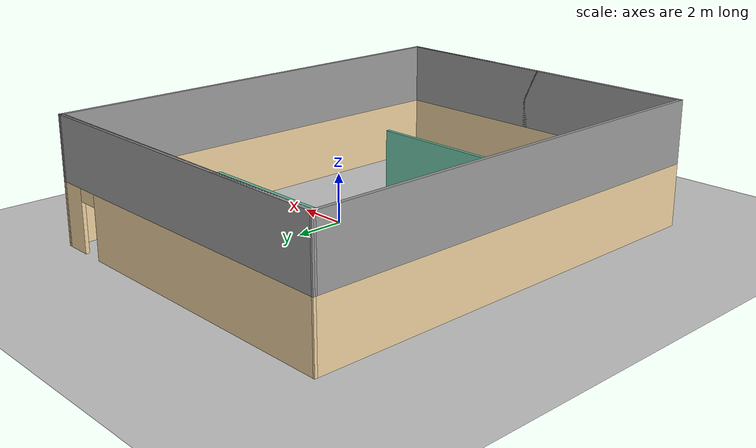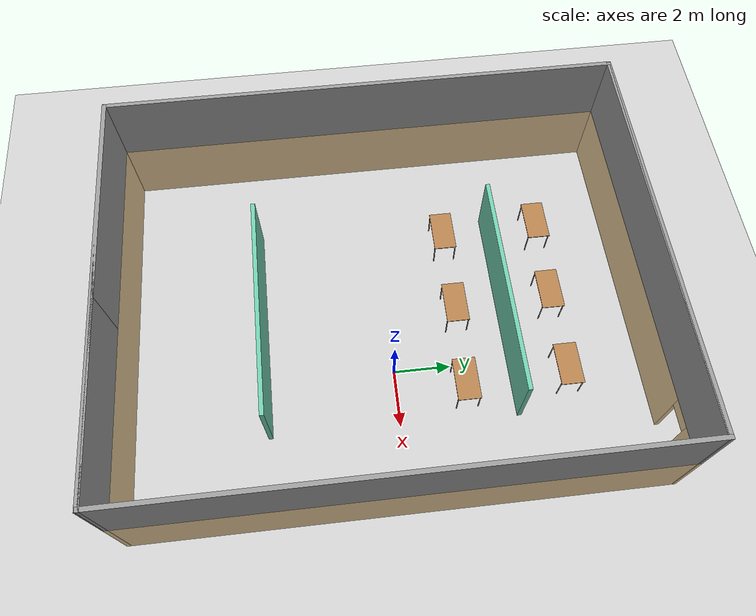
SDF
<sdf version="1.7">
 <world name="default">
  <model name="ground_plane">
   <static>1</static>
   <link name="link">
    <collision name="collision">
     <geometry><plane><normal>0 0 1</normal><size>100 100</size></plane></geometry>
     <surface>
      <contact><collide_bitmask>65535</collide_bitmask></contact>
      <friction><ode><mu>100</mu><mu2>50</mu2></ode></friction>
     </surface>
    </collision>
    <visual name="visual">
     <cast_shadows>0</cast_shadows>
     <geometry><plane><normal>0 0 1</normal><size>100 100</size></plane></geometry>
     <material>
      <script><uri>file://media/materials/scripts/gazebo.material</uri><name>Gazebo/Grey</name></script>
     </material>
    </visual>
   </link>
  </model>
  <model name="paredes">
   <link name="Wall_10">
    <pose>0 8.92496 2.5 0 -0 0.001098</pose>
    <visual name="Wall_10_Visual">
     <pose>0 0 1.25 0 -0 0</pose>
     <geometry><box><size>14 0.15 2.5</size></box></geometry>
     <material>
      <script><uri>file://media/materials/scripts/gazebo.material</uri><name>Gazebo/Grey</name></script>
      <ambient>1 1 1 1</ambient>
      <shader type="pixel"/>
     </material>
     <meta><layer>1</layer></meta>
    </visual>
    <collision name="Wall_10_Collision">
     <pose>0 0 1.25 0 -0 0</pose>
     <geometry><box><size>14 0.15 2.5</size></box></geometry>
     <surface>
      <friction>
       <ode><mu>1</mu><mu2>1</mu2><fdir1>0 0 0</fdir1><slip1>0</slip1><slip2>0</slip2></ode>
       <torsional>
        <coefficient>1</coefficient>
        <patch_radius>0</patch_radius>
        <surface_radius>0</surface_radius>
        <use_patch_radius>1</use_patch_radius>
        <ode><slip>0</slip></ode>
       </torsional>
      </friction>
      <bounce><restitution_coefficient>0</restitution_coefficient><threshold>1e+06</threshold></bounce>
      <contact>
       <collide_without_contact>0</collide_without_contact>
       <collide_without_contact_bitmask>1</collide_without_contact_bitmask>
       <collide_bitmask>1</collide_bitmask>
       <ode>
        <soft_cfm>0</soft_cfm>
        <soft_erp>0.2</soft_erp>
        <kp>1e+13</kp>
        <kd>1</kd>
        <max_vel>0.01</max_vel>
        <min_depth>0</min_depth>
       </ode>
       <bullet>
        <split_impulse>1</split_impulse>
        <split_impulse_penetration_threshold>-0.01</split_impulse_penetration_threshold>
        <soft_cfm>0</soft_cfm>
        <soft_erp>0.2</soft_erp>
        <kp>1e+13</kp>
        <kd>1</kd>
       </bullet>
      </contact>
     </surface>
    </collision>
   </link>
   <link name="Wall_11">
    <pose>-6.925 -0.007645 2.5 0 0 -1.5708</pose>
    <visual name="Wall_11_Visual">
     <pose>0 0 1.25 0 -0 0</pose>
     <geometry><box><size>18 0.15 2.5</size></box></geometry>
     <material>
      <script><uri>file://media/materials/scripts/gazebo.material</uri><name>Gazebo/Grey</name></script>
      <ambient>1 1 1 1</ambient>
      <shader type="pixel"/>
     </material>
     <meta><layer>1</layer></meta>
    </visual>
    <collision name="Wall_11_Collision">
     <pose>0 0 1.25 0 -0 0</pose>
     <geometry><box><size>18 0.15 2.5</size></box></geometry>
     <surface>
      <friction>
       <ode><mu>1</mu><mu2>1</mu2><fdir1>0 0 0</fdir1><slip1>0</slip1><slip2>0</slip2></ode>
       <torsional>
        <coefficient>1</coefficient>
        <patch_radius>0</patch_radius>
        <surface_radius>0</surface_radius>
        <use_patch_radius>1</use_patch_radius>
        <ode><slip>0</slip></ode>
       </torsional>
      </friction>
      <bounce><restitution_coefficient>0</restitution_coefficient><threshold>1e+06</threshold></bounce>
      <contact>
       <collide_without_contact>0</collide_without_contact>
       <collide_without_contact_bitmask>1</collide_without_contact_bitmask>
       <collide_bitmask>1</collide_bitmask>
       <ode>
        <soft_cfm>0</soft_cfm>
        <soft_erp>0.2</soft_erp>
        <kp>1e+13</kp>
        <kd>1</kd>
        <max_vel>0.01</max_vel>
        <min_depth>0</min_depth>
       </ode>
       <bullet>
        <split_impulse>1</split_impulse>
        <split_impulse_penetration_threshold>-0.01</split_impulse_penetration_threshold>
        <soft_cfm>0</soft_cfm>
        <soft_erp>0.2</soft_erp>
        <kp>1e+13</kp>
        <kd>1</kd>
       </bullet>
      </contact>
     </surface>
    </collision>
   </link>
   <link name="Wall_12">
    <pose>6.925 0.007564 2.5 0 0 -1.5708</pose>
    <inertial>
     <mass>1</mass>
     <inertia><ixx>1</ixx><ixy>0</ixy><ixz>0</ixz><iyy>1</iyy><iyz>0</iyz><izz>1</izz></inertia>
    </inertial>
    <visual name="Wall_12_Visual">
     <pose>0 0 1.25 0 -0 0</pose>
     <geometry><box><size>18 0.15 2.5</size></box></geometry>
     <material>
      <script><uri>file://media/materials/scripts/gazebo.material</uri><name>Gazebo/Grey</name></script>
      <ambient>1 1 1 1</ambient>
      <shader type="pixel"><normal_map>__default__</normal_map></shader>
      <diffuse>0.7 0.7 0.7 1</diffuse>
      <specular>0.01 0.01 0.01 1</specular>
      <emissive>0 0 0 1</emissive>
     </material>
     <meta><layer>1</layer></meta>
    </visual>
    <collision name="Wall_12_Collision">
     <pose>0 0 1.25 0 -0 0</pose>
     <geometry><box><size>18 0.15 2.5</size></box></geometry>
     <surface>
      <friction>
       <ode><mu>1</mu><mu2>1</mu2><fdir1>0 0 0</fdir1><slip1>0</slip1><slip2>0</slip2></ode>
       <torsional>
        <coefficient>1</coefficient>
        <patch_radius>0</patch_radius>
        <surface_radius>0</surface_radius>
        <use_patch_radius>1</use_patch_radius>
        <ode><slip>0</slip></ode>
       </torsional>
      </friction>
      <bounce><restitution_coefficient>0</restitution_coefficient><threshold>1e+06</threshold></bounce>
      <contact>
       <collide_without_contact>0</collide_without_contact>
       <collide_without_contact_bitmask>1</collide_without_contact_bitmask>
       <collide_bitmask>1</collide_bitmask>
       <ode>
        <soft_cfm>0</soft_cfm>
        <soft_erp>0.2</soft_erp>
        <kp>1e+13</kp>
        <kd>1</kd>
        <max_vel>0.01</max_vel>
        <min_depth>0</min_depth>
       </ode>
       <bullet>
        <split_impulse>1</split_impulse>
        <split_impulse_penetration_threshold>-0.01</split_impulse_penetration_threshold>
        <soft_cfm>0</soft_cfm>
        <soft_erp>0.2</soft_erp>
        <kp>1e+13</kp>
        <kd>1</kd>
       </bullet>
      </contact>
     </surface>
    </collision>
   </link>
   <link name="Wall_13">
    <pose>0 -8.93265 2.5 0 -0 0</pose>
    <visual name="Wall_13_Visual">
     <pose>0 0 1.25 0 -0 0</pose>
     <geometry><box><size>14 0.15 2.5</size></box></geometry>
     <material>
      <script><uri>file://media/materials/scripts/gazebo.material</uri><name>Gazebo/Grey</name></script>
      <ambient>1 1 1 1</ambient>
      <shader type="pixel"/>
     </material>
     <meta><layer>1</layer></meta>
    </visual>
    <collision name="Wall_13_Collision">
     <pose>0 0 1.25 0 -0 0</pose>
     <geometry><box><size>14 0.15 2.5</size></box></geometry>
     <surface>
      <friction>
       <ode><mu>1</mu><mu2>1</mu2><fdir1>0 0 0</fdir1><slip1>0</slip1><slip2>0</slip2></ode>
       <torsional>
        <coefficient>1</coefficient>
        <patch_radius>0</patch_radius>
        <surface_radius>0</surface_radius>
        <use_patch_radius>1</use_patch_radius>
        <ode><slip>0</slip></ode>
       </torsional>
      </friction>
      <bounce><restitution_coefficient>0</restitution_coefficient><threshold>1e+06</threshold></bounce>
      <contact>
       <collide_without_contact>0</collide_without_contact>
       <collide_without_contact_bitmask>1</collide_without_contact_bitmask>
       <collide_bitmask>1</collide_bitmask>
       <ode>
        <soft_cfm>0</soft_cfm>
        <soft_erp>0.2</soft_erp>
        <kp>1e+13</kp>
        <kd>1</kd>
        <max_vel>0.01</max_vel>
        <min_depth>0</min_depth>
       </ode>
       <bullet>
        <split_impulse>1</split_impulse>
        <split_impulse_penetration_threshold>-0.01</split_impulse_penetration_threshold>
        <soft_cfm>0</soft_cfm>
        <soft_erp>0.2</soft_erp>
        <kp>1e+13</kp>
        <kd>1</kd>
       </bullet>
      </contact>
     </surface>
    </collision>
   </link>
   <link name="Wall_14">
    <pose>0 8.91736 2.5 0 -0 0</pose>
    <visual name="Wall_14_Visual">
     <pose>0 0 1.25 0 -0 0</pose>
     <geometry><box><size>14 0.15 2.5</size></box></geometry>
     <material>
      <script><uri>file://media/materials/scripts/gazebo.material</uri><name>Gazebo/Grey</name></script>
      <ambient>1 1 1 1</ambient>
      <shader type="pixel"/>
     </material>
     <meta><layer>1</layer></meta>
    </visual>
    <collision name="Wall_14_Collision">
     <pose>0 0 1.25 0 -0 0</pose>
     <geometry><box><size>14 0.15 2.5</size></box></geometry>
     <surface>
      <friction>
       <ode><mu>1</mu><mu2>1</mu2><fdir1>0 0 0</fdir1><slip1>0</slip1><slip2>0</slip2></ode>
       <torsional>
        <coefficient>1</coefficient>
        <patch_radius>0</patch_radius>
        <surface_radius>0</surface_radius>
        <use_patch_radius>1</use_patch_radius>
        <ode><slip>0</slip></ode>
       </torsional>
      </friction>
      <bounce><restitution_coefficient>0</restitution_coefficient><threshold>1e+06</threshold></bounce>
      <contact>
       <collide_without_contact>0</collide_without_contact>
       <collide_without_contact_bitmask>1</collide_without_contact_bitmask>
       <collide_bitmask>1</collide_bitmask>
       <ode>
        <soft_cfm>0</soft_cfm>
        <soft_erp>0.2</soft_erp>
        <kp>1e+13</kp>
        <kd>1</kd>
        <max_vel>0.01</max_vel>
        <min_depth>0</min_depth>
       </ode>
       <bullet>
        <split_impulse>1</split_impulse>
        <split_impulse_penetration_threshold>-0.01</split_impulse_penetration_threshold>
        <soft_cfm>0</soft_cfm>
        <soft_erp>0.2</soft_erp>
        <kp>1e+13</kp>
        <kd>1</kd>
       </bullet>
      </contact>
     </surface>
    </collision>
   </link>
   <link name="Wall_16">
    <pose>-6.925 -0.007645 2.5 0 0 -1.5708</pose>
    <visual name="Wall_16_Visual">
     <pose>0 0 1.25 0 -0 0</pose>
     <geometry><box><size>18 0.15 2.5</size></box></geometry>
     <material>
      <script><uri>file://media/materials/scripts/gazebo.material</uri><name>Gazebo/Grey</name></script>
      <ambient>1 1 1 1</ambient>
      <shader type="pixel"/>
     </material>
     <meta><layer>1</layer></meta>
    </visual>
    <collision name="Wall_16_Collision">
     <pose>0 0 1.25 0 -0 0</pose>
     <geometry><box><size>18 0.15 2.5</size></box></geometry>
     <surface>
      <friction>
       <ode><mu>1</mu><mu2>1</mu2><fdir1>0 0 0</fdir1><slip1>0</slip1><slip2>0</slip2></ode>
       <torsional>
        <coefficient>1</coefficient>
        <patch_radius>0</patch_radius>
        <surface_radius>0</surface_radius>
        <use_patch_radius>1</use_patch_radius>
        <ode><slip>0</slip></ode>
       </torsional>
      </friction>
      <bounce><restitution_coefficient>0</restitution_coefficient><threshold>1e+06</threshold></bounce>
      <contact>
       <collide_without_contact>0</collide_without_contact>
       <collide_without_contact_bitmask>1</collide_without_contact_bitmask>
       <collide_bitmask>1</collide_bitmask>
       <ode>
        <soft_cfm>0</soft_cfm>
        <soft_erp>0.2</soft_erp>
        <kp>1e+13</kp>
        <kd>1</kd>
        <max_vel>0.01</max_vel>
        <min_depth>0</min_depth>
       </ode>
       <bullet>
        <split_impulse>1</split_impulse>
        <split_impulse_penetration_threshold>-0.01</split_impulse_penetration_threshold>
        <soft_cfm>0</soft_cfm>
        <soft_erp>0.2</soft_erp>
        <kp>1e+13</kp>
        <kd>1</kd>
       </bullet>
      </contact>
     </surface>
    </collision>
   </link>
   <link name="Wall_2">
    <pose>0 8.92496 0 0 -0 0.001098</pose>
    <visual name="Wall_2_Visual_1">
     <pose>6.41449 0 1.25 0 -0 0</pose>
     <geometry><box><size>1.17102 0.15 2.5</size></box></geometry>
     <material>
      <script><uri>file://media/materials/scripts/gazebo.material</uri><name>Gazebo/Grey</name></script>
      <ambient>0.921569 0.807843 0.615686 1</ambient>
      <shader type="pixel"/>
     </material>
     <meta><layer>0</layer></meta>
    </visual>
    <visual name="Wall_2_Visual_2">
     <pose>5.37898 0 2.25 0 -0 0</pose>
     <geometry><box><size>0.9 0.15 0.5</size></box></geometry>
     <material>
      <script><uri>file://media/materials/scripts/gazebo.material</uri><name>Gazebo/Grey</name></script>
      <ambient>0.921569 0.807843 0.615686 1</ambient>
      <shader type="pixel"/>
     </material>
     <meta><layer>0</layer></meta>
    </visual>
    <visual name="Wall_2_Visual_0">
     <pose>-1.03551 0 1.25 0 -0 0</pose>
     <geometry><box><size>11.929 0.15 2.5</size></box></geometry>
     <material>
      <script><uri>file://media/materials/scripts/gazebo.material</uri><name>Gazebo/Grey</name></script>
      <ambient>0.921569 0.807843 0.615686 1</ambient>
      <shader type="pixel"/>
     </material>
     <meta><layer>0</layer></meta>
    </visual>
    <collision name="Wall_2_Collision_0">
     <pose>-1.03551 0 1.25 0 -0 0</pose>
     <geometry><box><size>11.929 0.15 2.5</size></box></geometry>
     <surface>
      <friction>
       <ode><mu>1</mu><mu2>1</mu2><fdir1>0 0 0</fdir1><slip1>0</slip1><slip2>0</slip2></ode>
       <torsional>
        <coefficient>1</coefficient>
        <patch_radius>0</patch_radius>
        <surface_radius>0</surface_radius>
        <use_patch_radius>1</use_patch_radius>
        <ode><slip>0</slip></ode>
       </torsional>
      </friction>
      <bounce><restitution_coefficient>0</restitution_coefficient><threshold>1e+06</threshold></bounce>
      <contact>
       <collide_without_contact>0</collide_without_contact>
       <collide_without_contact_bitmask>1</collide_without_contact_bitmask>
       <collide_bitmask>1</collide_bitmask>
       <ode>
        <soft_cfm>0</soft_cfm>
        <soft_erp>0.2</soft_erp>
        <kp>1e+13</kp>
        <kd>1</kd>
        <max_vel>0.01</max_vel>
        <min_depth>0</min_depth>
       </ode>
       <bullet>
        <split_impulse>1</split_impulse>
        <split_impulse_penetration_threshold>-0.01</split_impulse_penetration_threshold>
        <soft_cfm>0</soft_cfm>
        <soft_erp>0.2</soft_erp>
        <kp>1e+13</kp>
        <kd>1</kd>
       </bullet>
      </contact>
     </surface>
    </collision>
    <collision name="Wall_2_Collision_1">
     <pose>6.41449 0 1.25 0 -0 0</pose>
     <geometry><box><size>1.17102 0.15 2.5</size></box></geometry>
     <surface>
      <friction>
       <ode><mu>1</mu><mu2>1</mu2><fdir1>0 0 0</fdir1><slip1>0</slip1><slip2>0</slip2></ode>
       <torsional>
        <coefficient>1</coefficient>
        <patch_radius>0</patch_radius>
        <surface_radius>0</surface_radius>
        <use_patch_radius>1</use_patch_radius>
        <ode><slip>0</slip></ode>
       </torsional>
      </friction>
      <bounce><restitution_coefficient>0</restitution_coefficient><threshold>1e+06</threshold></bounce>
      <contact>
       <collide_without_contact>0</collide_without_contact>
       <collide_without_contact_bitmask>1</collide_without_contact_bitmask>
       <collide_bitmask>1</collide_bitmask>
       <ode>
        <soft_cfm>0</soft_cfm>
        <soft_erp>0.2</soft_erp>
        <kp>1e+13</kp>
        <kd>1</kd>
        <max_vel>0.01</max_vel>
        <min_depth>0</min_depth>
       </ode>
       <bullet>
        <split_impulse>1</split_impulse>
        <split_impulse_penetration_threshold>-0.01</split_impulse_penetration_threshold>
        <soft_cfm>0</soft_cfm>
        <soft_erp>0.2</soft_erp>
        <kp>1e+13</kp>
        <kd>1</kd>
       </bullet>
      </contact>
     </surface>
    </collision>
    <collision name="Wall_2_Collision_2">
     <pose>5.37898 0 2.25 0 -0 0</pose>
     <geometry><box><size>0.9 0.15 0.5</size></box></geometry>
     <surface>
      <friction>
       <ode><mu>1</mu><mu2>1</mu2><fdir1>0 0 0</fdir1><slip1>0</slip1><slip2>0</slip2></ode>
       <torsional>
        <coefficient>1</coefficient>
        <patch_radius>0</patch_radius>
        <surface_radius>0</surface_radius>
        <use_patch_radius>1</use_patch_radius>
        <ode><slip>0</slip></ode>
       </torsional>
      </friction>
      <bounce><restitution_coefficient>0</restitution_coefficient><threshold>1e+06</threshold></bounce>
      <contact>
       <collide_without_contact>0</collide_without_contact>
       <collide_without_contact_bitmask>1</collide_without_contact_bitmask>
       <collide_bitmask>1</collide_bitmask>
       <ode>
        <soft_cfm>0</soft_cfm>
        <soft_erp>0.2</soft_erp>
        <kp>1e+13</kp>
        <kd>1</kd>
        <max_vel>0.01</max_vel>
        <min_depth>0</min_depth>
       </ode>
       <bullet>
        <split_impulse>1</split_impulse>
        <split_impulse_penetration_threshold>-0.01</split_impulse_penetration_threshold>
        <soft_cfm>0</soft_cfm>
        <soft_erp>0.2</soft_erp>
        <kp>1e+13</kp>
        <kd>1</kd>
       </bullet>
      </contact>
     </surface>
    </collision>
   </link>
   <link name="Wall_20">
    <pose>0 -8.93265 2.5 0 -0 3.14159</pose>
    <visual name="Wall_20_Visual">
     <pose>0 0 1.25 0 -0 0</pose>
     <geometry><box><size>14 0.15 2.5</size></box></geometry>
     <material>
      <script><uri>file://media/materials/scripts/gazebo.material</uri><name>Gazebo/Grey</name></script>
      <ambient>1 1 1 1</ambient>
      <shader type="pixel"/>
     </material>
     <meta><layer>1</layer></meta>
    </visual>
    <collision name="Wall_20_Collision">
     <pose>0 0 1.25 0 -0 0</pose>
     <geometry><box><size>14 0.15 2.5</size></box></geometry>
     <surface>
      <friction>
       <ode><mu>1</mu><mu2>1</mu2><fdir1>0 0 0</fdir1><slip1>0</slip1><slip2>0</slip2></ode>
       <torsional>
        <coefficient>1</coefficient>
        <patch_radius>0</patch_radius>
        <surface_radius>0</surface_radius>
        <use_patch_radius>1</use_patch_radius>
        <ode><slip>0</slip></ode>
       </torsional>
      </friction>
      <bounce><restitution_coefficient>0</restitution_coefficient><threshold>1e+06</threshold></bounce>
      <contact>
       <collide_without_contact>0</collide_without_contact>
       <collide_without_contact_bitmask>1</collide_without_contact_bitmask>
       <collide_bitmask>1</collide_bitmask>
       <ode>
        <soft_cfm>0</soft_cfm>
        <soft_erp>0.2</soft_erp>
        <kp>1e+13</kp>
        <kd>1</kd>
        <max_vel>0.01</max_vel>
        <min_depth>0</min_depth>
       </ode>
       <bullet>
        <split_impulse>1</split_impulse>
        <split_impulse_penetration_threshold>-0.01</split_impulse_penetration_threshold>
        <soft_cfm>0</soft_cfm>
        <soft_erp>0.2</soft_erp>
        <kp>1e+13</kp>
        <kd>1</kd>
       </bullet>
      </contact>
     </surface>
    </collision>
   </link>
   <link name="Wall_22">
    <pose>0.076814 4.29812 0 0 -0 0</pose>
    <visual name="Wall_22_Visual">
     <pose>0 0 1.25 0 -0 0</pose>
     <geometry><box><size>8 0.15 2.5</size></box></geometry>
     <material>
      <script><uri>file://media/materials/scripts/gazebo.material</uri><name>Gazebo/Grey</name></script>
      <ambient>0.435294 0.796078 0.67451 1</ambient>
      <shader type="pixel"/>
     </material>
     <meta><layer>0</layer></meta>
    </visual>
    <collision name="Wall_22_Collision">
     <pose>0 0 1.25 0 -0 0</pose>
     <geometry><box><size>8 0.15 2.5</size></box></geometry>
     <surface>
      <friction>
       <ode><mu>1</mu><mu2>1</mu2><fdir1>0 0 0</fdir1><slip1>0</slip1><slip2>0</slip2></ode>
       <torsional>
        <coefficient>1</coefficient>
        <patch_radius>0</patch_radius>
        <surface_radius>0</surface_radius>
        <use_patch_radius>1</use_patch_radius>
        <ode><slip>0</slip></ode>
       </torsional>
      </friction>
      <bounce><restitution_coefficient>0</restitution_coefficient><threshold>1e+06</threshold></bounce>
      <contact>
       <collide_without_contact>0</collide_without_contact>
       <collide_without_contact_bitmask>1</collide_without_contact_bitmask>
       <collide_bitmask>1</collide_bitmask>
       <ode>
        <soft_cfm>0</soft_cfm>
        <soft_erp>0.2</soft_erp>
        <kp>1e+13</kp>
        <kd>1</kd>
        <max_vel>0.01</max_vel>
        <min_depth>0</min_depth>
       </ode>
       <bullet>
        <split_impulse>1</split_impulse>
        <split_impulse_penetration_threshold>-0.01</split_impulse_penetration_threshold>
        <soft_cfm>0</soft_cfm>
        <soft_erp>0.2</soft_erp>
        <kp>1e+13</kp>
        <kd>1</kd>
       </bullet>
      </contact>
     </surface>
    </collision>
   </link>
   <link name="Wall_24">
    <pose>-0.021051 -4.26506 0 0 -0 0</pose>
    <visual name="Wall_24_Visual">
     <pose>0 0 1.25 0 -0 0</pose>
     <geometry><box><size>8 0.15 2.5</size></box></geometry>
     <material>
      <script><uri>file://media/materials/scripts/gazebo.material</uri><name>Gazebo/Grey</name></script>
      <ambient>0.435294 0.796078 0.67451 1</ambient>
      <shader type="pixel"/>
     </material>
     <meta><layer>0</layer></meta>
    </visual>
    <collision name="Wall_24_Collision">
     <pose>0 0 1.25 0 -0 0</pose>
     <geometry><box><size>8 0.15 2.5</size></box></geometry>
     <surface>
      <friction>
       <ode><mu>1</mu><mu2>1</mu2><fdir1>0 0 0</fdir1><slip1>0</slip1><slip2>0</slip2></ode>
       <torsional>
        <coefficient>1</coefficient>
        <patch_radius>0</patch_radius>
        <surface_radius>0</surface_radius>
        <use_patch_radius>1</use_patch_radius>
        <ode><slip>0</slip></ode>
       </torsional>
      </friction>
      <bounce><restitution_coefficient>0</restitution_coefficient><threshold>1e+06</threshold></bounce>
      <contact>
       <collide_without_contact>0</collide_without_contact>
       <collide_without_contact_bitmask>1</collide_without_contact_bitmask>
       <collide_bitmask>1</collide_bitmask>
       <ode>
        <soft_cfm>0</soft_cfm>
        <soft_erp>0.2</soft_erp>
        <kp>1e+13</kp>
        <kd>1</kd>
        <max_vel>0.01</max_vel>
        <min_depth>0</min_depth>
       </ode>
       <bullet>
        <split_impulse>1</split_impulse>
        <split_impulse_penetration_threshold>-0.01</split_impulse_penetration_threshold>
        <soft_cfm>0</soft_cfm>
        <soft_erp>0.2</soft_erp>
        <kp>1e+13</kp>
        <kd>1</kd>
       </bullet>
      </contact>
     </surface>
    </collision>
   </link>
   <link name="Wall_4">
    <pose>-6.925 -0.007645 0 0 0 -1.5708</pose>
    <visual name="Wall_4_Visual">
     <pose>0 0 1.25 0 -0 0</pose>
     <geometry><box><size>18 0.15 2.5</size></box></geometry>
     <material>
      <script><uri>file://media/materials/scripts/gazebo.material</uri><name>Gazebo/Grey</name></script>
      <ambient>0.921569 0.807843 0.615686 1</ambient>
      <shader type="pixel"/>
     </material>
     <meta><layer>0</layer></meta>
    </visual>
    <collision name="Wall_4_Collision">
     <pose>0 0 1.25 0 -0 0</pose>
     <geometry><box><size>18 0.15 2.5</size></box></geometry>
     <surface>
      <friction>
       <ode><mu>1</mu><mu2>1</mu2><fdir1>0 0 0</fdir1><slip1>0</slip1><slip2>0</slip2></ode>
       <torsional>
        <coefficient>1</coefficient>
        <patch_radius>0</patch_radius>
        <surface_radius>0</surface_radius>
        <use_patch_radius>1</use_patch_radius>
        <ode><slip>0</slip></ode>
       </torsional>
      </friction>
      <bounce><restitution_coefficient>0</restitution_coefficient><threshold>1e+06</threshold></bounce>
      <contact>
       <collide_without_contact>0</collide_without_contact>
       <collide_without_contact_bitmask>1</collide_without_contact_bitmask>
       <collide_bitmask>1</collide_bitmask>
       <ode>
        <soft_cfm>0</soft_cfm>
        <soft_erp>0.2</soft_erp>
        <kp>1e+13</kp>
        <kd>1</kd>
        <max_vel>0.01</max_vel>
        <min_depth>0</min_depth>
       </ode>
       <bullet>
        <split_impulse>1</split_impulse>
        <split_impulse_penetration_threshold>-0.01</split_impulse_penetration_threshold>
        <soft_cfm>0</soft_cfm>
        <soft_erp>0.2</soft_erp>
        <kp>1e+13</kp>
        <kd>1</kd>
       </bullet>
      </contact>
     </surface>
    </collision>
   </link>
   <link name="Wall_6">
    <pose>6.925 0.007564 0 0 0 -1.5708</pose>
    <visual name="Wall_6_Visual">
     <pose>0 0 1.25 0 -0 0</pose>
     <geometry><box><size>18 0.15 2.5</size></box></geometry>
     <material>
      <script><uri>file://media/materials/scripts/gazebo.material</uri><name>Gazebo/Grey</name></script>
      <ambient>0.921569 0.807843 0.615686 1</ambient>
      <shader type="pixel"/>
     </material>
     <meta><layer>0</layer></meta>
    </visual>
    <collision name="Wall_6_Collision">
     <pose>0 0 1.25 0 -0 0</pose>
     <geometry><box><size>18 0.15 2.5</size></box></geometry>
     <surface>
      <friction>
       <ode><mu>1</mu><mu2>1</mu2><fdir1>0 0 0</fdir1><slip1>0</slip1><slip2>0</slip2></ode>
       <torsional>
        <coefficient>1</coefficient>
        <patch_radius>0</patch_radius>
        <surface_radius>0</surface_radius>
        <use_patch_radius>1</use_patch_radius>
        <ode><slip>0</slip></ode>
       </torsional>
      </friction>
      <bounce><restitution_coefficient>0</restitution_coefficient><threshold>1e+06</threshold></bounce>
      <contact>
       <collide_without_contact>0</collide_without_contact>
       <collide_without_contact_bitmask>1</collide_without_contact_bitmask>
       <collide_bitmask>1</collide_bitmask>
       <ode>
        <soft_cfm>0</soft_cfm>
        <soft_erp>0.2</soft_erp>
        <kp>1e+13</kp>
        <kd>1</kd>
        <max_vel>0.01</max_vel>
        <min_depth>0</min_depth>
       </ode>
       <bullet>
        <split_impulse>1</split_impulse>
        <split_impulse_penetration_threshold>-0.01</split_impulse_penetration_threshold>
        <soft_cfm>0</soft_cfm>
        <soft_erp>0.2</soft_erp>
        <kp>1e+13</kp>
        <kd>1</kd>
       </bullet>
      </contact>
     </surface>
    </collision>
   </link>
   <link name="Wall_8">
    <pose>0 -8.93265 0 0 -0 0</pose>
    <visual name="Wall_8_Visual">
     <pose>0 0 1.25 0 -0 0</pose>
     <geometry><box><size>14 0.15 2.5</size></box></geometry>
     <material>
      <script><uri>file://media/materials/scripts/gazebo.material</uri><name>Gazebo/Grey</name></script>
      <ambient>0.921569 0.807843 0.615686 1</ambient>
      <shader type="pixel"/>
     </material>
     <meta><layer>0</layer></meta>
    </visual>
    <collision name="Wall_8_Collision">
     <pose>0 0 1.25 0 -0 0</pose>
     <geometry><box><size>14 0.15 2.5</size></box></geometry>
     <surface>
      <friction>
       <ode><mu>1</mu><mu2>1</mu2><fdir1>0 0 0</fdir1><slip1>0</slip1><slip2>0</slip2></ode>
       <torsional>
        <coefficient>1</coefficient>
        <patch_radius>0</patch_radius>
        <surface_radius>0</surface_radius>
        <use_patch_radius>1</use_patch_radius>
        <ode><slip>0</slip></ode>
       </torsional>
      </friction>
      <bounce><restitution_coefficient>0</restitution_coefficient><threshold>1e+06</threshold></bounce>
      <contact>
       <collide_without_contact>0</collide_without_contact>
       <collide_without_contact_bitmask>1</collide_without_contact_bitmask>
       <collide_bitmask>1</collide_bitmask>
       <ode>
        <soft_cfm>0</soft_cfm>
        <soft_erp>0.2</soft_erp>
        <kp>1e+13</kp>
        <kd>1</kd>
        <max_vel>0.01</max_vel>
        <min_depth>0</min_depth>
       </ode>
       <bullet>
        <split_impulse>1</split_impulse>
        <split_impulse_penetration_threshold>-0.01</split_impulse_penetration_threshold>
        <soft_cfm>0</soft_cfm>
        <soft_erp>0.2</soft_erp>
        <kp>1e+13</kp>
        <kd>1</kd>
       </bullet>
      </contact>
     </surface>
    </collision>
   </link>
   <static>1</static>
   <pose>-2.02299 -0.188976 -0 0 -0 0</pose>
  </model>
  <model name="table">
   <static>1</static>
   <link name="link">
    <collision name="surface">
     <pose>0 0 1 0 -0 0</pose>
     <geometry><box><size>1.5 0.8 0.03</size></box></geometry>
     <surface><friction><ode><mu>0.6</mu><mu2>0.6</mu2></ode></friction></surface>
    </collision>
    <visual name="visual1">
     <pose>0 0 1 0 -0 0</pose>
     <geometry><box><size>1.5 0.8 0.03</size></box></geometry>
     <material>
      <script><uri>file://media/materials/scripts/gazebo.material</uri><name>Gazebo/Wood</name></script>
     </material>
    </visual>
    <collision name="front_left_leg">
     <pose>0.68 0.38 0.5 0 -0 0</pose>
     <geometry><cylinder><radius>0.02</radius><length>1</length></cylinder></geometry>
    </collision>
    <visual name="front_left_leg">
     <pose>0.68 0.38 0.5 0 -0 0</pose>
     <geometry><cylinder><radius>0.02</radius><length>1</length></cylinder></geometry>
     <material>
      <script><uri>file://media/materials/scripts/gazebo.material</uri><name>Gazebo/Grey</name></script>
     </material>
    </visual>
    <collision name="front_right_leg">
     <pose>0.68 -0.38 0.5 0 -0 0</pose>
     <geometry><cylinder><radius>0.02</radius><length>1</length></cylinder></geometry>
    </collision>
    <visual name="front_right_leg">
     <pose>0.68 -0.38 0.5 0 -0 0</pose>
     <geometry><cylinder><radius>0.02</radius><length>1</length></cylinder></geometry>
     <material>
      <script><uri>file://media/materials/scripts/gazebo.material</uri><name>Gazebo/Grey</name></script>
     </material>
    </visual>
    <collision name="back_right_leg">
     <pose>-0.68 -0.38 0.5 0 -0 0</pose>
     <geometry><cylinder><radius>0.02</radius><length>1</length></cylinder></geometry>
    </collision>
    <visual name="back_right_leg">
     <pose>-0.68 -0.38 0.5 0 -0 0</pose>
     <geometry><cylinder><radius>0.02</radius><length>1</length></cylinder></geometry>
     <material>
      <script><uri>file://media/materials/scripts/gazebo.material</uri><name>Gazebo/Grey</name></script>
     </material>
    </visual>
    <collision name="back_left_leg">
     <pose>-0.68 0.38 0.5 0 -0 0</pose>
     <geometry><cylinder><radius>0.02</radius><length>1</length></cylinder></geometry>
    </collision>
    <visual name="back_left_leg">
     <pose>-0.68 0.38 0.5 0 -0 0</pose>
     <geometry><cylinder><radius>0.02</radius><length>1</length></cylinder></geometry>
     <material>
      <script><uri>file://media/materials/scripts/gazebo.material</uri><name>Gazebo/Grey</name></script>
     </material>
    </visual>
   </link>
   <pose>0.89007 2.36938 0 0 -0 0</pose>
  </model>
  <model name="table_1">
   <static>1</static>
   <link name="link">
    <collision name="surface">
     <pose>0 0 1 0 -0 0</pose>
     <geometry><box><size>1.5 0.8 0.03</size></box></geometry>
     <surface><friction><ode><mu>0.6</mu><mu2>0.6</mu2></ode></friction></surface>
    </collision>
    <visual name="visual1">
     <pose>0 0 1 0 -0 0</pose>
     <geometry><box><size>1.5 0.8 0.03</size></box></geometry>
     <material>
      <script><uri>file://media/materials/scripts/gazebo.material</uri><name>Gazebo/Wood</name></script>
     </material>
    </visual>
    <collision name="front_left_leg">
     <pose>0.68 0.38 0.5 0 -0 0</pose>
     <geometry><cylinder><radius>0.02</radius><length>1</length></cylinder></geometry>
    </collision>
    <visual name="front_left_leg">
     <pose>0.68 0.38 0.5 0 -0 0</pose>
     <geometry><cylinder><radius>0.02</radius><length>1</length></cylinder></geometry>
     <material>
      <script><uri>file://media/materials/scripts/gazebo.material</uri><name>Gazebo/Grey</name></script>
     </material>
    </visual>
    <collision name="front_right_leg">
     <pose>0.68 -0.38 0.5 0 -0 0</pose>
     <geometry><cylinder><radius>0.02</radius><length>1</length></cylinder></geometry>
    </collision>
    <visual name="front_right_leg">
     <pose>0.68 -0.38 0.5 0 -0 0</pose>
     <geometry><cylinder><radius>0.02</radius><length>1</length></cylinder></geometry>
     <material>
      <script><uri>file://media/materials/scripts/gazebo.material</uri><name>Gazebo/Grey</name></script>
     </material>
    </visual>
    <collision name="back_right_leg">
     <pose>-0.68 -0.38 0.5 0 -0 0</pose>
     <geometry><cylinder><radius>0.02</radius><length>1</length></cylinder></geometry>
    </collision>
    <visual name="back_right_leg">
     <pose>-0.68 -0.38 0.5 0 -0 0</pose>
     <geometry><cylinder><radius>0.02</radius><length>1</length></cylinder></geometry>
     <material>
      <script><uri>file://media/materials/scripts/gazebo.material</uri><name>Gazebo/Grey</name></script>
     </material>
    </visual>
    <collision name="back_left_leg">
     <pose>-0.68 0.38 0.5 0 -0 0</pose>
     <geometry><cylinder><radius>0.02</radius><length>1</length></cylinder></geometry>
    </collision>
    <visual name="back_left_leg">
     <pose>-0.68 0.38 0.5 0 -0 0</pose>
     <geometry><cylinder><radius>0.02</radius><length>1</length></cylinder></geometry>
     <material>
      <script><uri>file://media/materials/scripts/gazebo.material</uri><name>Gazebo/Grey</name></script>
     </material>
    </visual>
   </link>
   <pose>-2.04895 2.43683 0 0 -0 0</pose>
  </model>
  <model name="table_2">
   <static>1</static>
   <link name="link">
    <collision name="surface">
     <pose>0 0 1 0 -0 0</pose>
     <geometry><box><size>1.5 0.8 0.03</size></box></geometry>
     <surface><friction><ode><mu>0.6</mu><mu2>0.6</mu2></ode></friction></surface>
    </collision>
    <visual name="visual1">
     <pose>0 0 1 0 -0 0</pose>
     <geometry><box><size>1.5 0.8 0.03</size></box></geometry>
     <material>
      <script><uri>file://media/materials/scripts/gazebo.material</uri><name>Gazebo/Wood</name></script>
     </material>
    </visual>
    <collision name="front_left_leg">
     <pose>0.68 0.38 0.5 0 -0 0</pose>
     <geometry><cylinder><radius>0.02</radius><length>1</length></cylinder></geometry>
    </collision>
    <visual name="front_left_leg">
     <pose>0.68 0.38 0.5 0 -0 0</pose>
     <geometry><cylinder><radius>0.02</radius><length>1</length></cylinder></geometry>
     <material>
      <script><uri>file://media/materials/scripts/gazebo.material</uri><name>Gazebo/Grey</name></script>
     </material>
    </visual>
    <collision name="front_right_leg">
     <pose>0.68 -0.38 0.5 0 -0 0</pose>
     <geometry><cylinder><radius>0.02</radius><length>1</length></cylinder></geometry>
    </collision>
    <visual name="front_right_leg">
     <pose>0.68 -0.38 0.5 0 -0 0</pose>
     <geometry><cylinder><radius>0.02</radius><length>1</length></cylinder></geometry>
     <material>
      <script><uri>file://media/materials/scripts/gazebo.material</uri><name>Gazebo/Grey</name></script>
     </material>
    </visual>
    <collision name="back_right_leg">
     <pose>-0.68 -0.38 0.5 0 -0 0</pose>
     <geometry><cylinder><radius>0.02</radius><length>1</length></cylinder></geometry>
    </collision>
    <visual name="back_right_leg">
     <pose>-0.68 -0.38 0.5 0 -0 0</pose>
     <geometry><cylinder><radius>0.02</radius><length>1</length></cylinder></geometry>
     <material>
      <script><uri>file://media/materials/scripts/gazebo.material</uri><name>Gazebo/Grey</name></script>
     </material>
    </visual>
    <collision name="back_left_leg">
     <pose>-0.68 0.38 0.5 0 -0 0</pose>
     <geometry><cylinder><radius>0.02</radius><length>1</length></cylinder></geometry>
    </collision>
    <visual name="back_left_leg">
     <pose>-0.68 0.38 0.5 0 -0 0</pose>
     <geometry><cylinder><radius>0.02</radius><length>1</length></cylinder></geometry>
     <material>
      <script><uri>file://media/materials/scripts/gazebo.material</uri><name>Gazebo/Grey</name></script>
     </material>
    </visual>
   </link>
   <pose>-5.05937 2.42047 0 0 -0 0</pose>
  </model>
  <model name="table_5">
   <static>1</static>
   <link name="link">
    <collision name="surface">
     <pose>0 0 1 0 -0 0</pose>
     <geometry><box><size>1.5 0.8 0.03</size></box></geometry>
     <surface><friction><ode><mu>0.6</mu><mu2>0.6</mu2></ode></friction></surface>
    </collision>
    <visual name="visual1">
     <pose>0 0 1 0 -0 0</pose>
     <geometry><box><size>1.5 0.8 0.03</size></box></geometry>
     <material>
      <script><uri>file://media/materials/scripts/gazebo.material</uri><name>Gazebo/Wood</name></script>
     </material>
    </visual>
    <collision name="front_left_leg">
     <pose>0.68 0.38 0.5 0 -0 0</pose>
     <geometry><cylinder><radius>0.02</radius><length>1</length></cylinder></geometry>
    </collision>
    <visual name="front_left_leg">
     <pose>0.68 0.38 0.5 0 -0 0</pose>
     <geometry><cylinder><radius>0.02</radius><length>1</length></cylinder></geometry>
     <material>
      <script><uri>file://media/materials/scripts/gazebo.material</uri><name>Gazebo/Grey</name></script>
     </material>
    </visual>
    <collision name="front_right_leg">
     <pose>0.68 -0.38 0.5 0 -0 0</pose>
     <geometry><cylinder><radius>0.02</radius><length>1</length></cylinder></geometry>
    </collision>
    <visual name="front_right_leg">
     <pose>0.68 -0.38 0.5 0 -0 0</pose>
     <geometry><cylinder><radius>0.02</radius><length>1</length></cylinder></geometry>
     <material>
      <script><uri>file://media/materials/scripts/gazebo.material</uri><name>Gazebo/Grey</name></script>
     </material>
    </visual>
    <collision name="back_right_leg">
     <pose>-0.68 -0.38 0.5 0 -0 0</pose>
     <geometry><cylinder><radius>0.02</radius><length>1</length></cylinder></geometry>
    </collision>
    <visual name="back_right_leg">
     <pose>-0.68 -0.38 0.5 0 -0 0</pose>
     <geometry><cylinder><radius>0.02</radius><length>1</length></cylinder></geometry>
     <material>
      <script><uri>file://media/materials/scripts/gazebo.material</uri><name>Gazebo/Grey</name></script>
     </material>
    </visual>
    <collision name="back_left_leg">
     <pose>-0.68 0.38 0.5 0 -0 0</pose>
     <geometry><cylinder><radius>0.02</radius><length>1</length></cylinder></geometry>
    </collision>
    <visual name="back_left_leg">
     <pose>-0.68 0.38 0.5 0 -0 0</pose>
     <geometry><cylinder><radius>0.02</radius><length>1</length></cylinder></geometry>
     <material>
      <script><uri>file://media/materials/scripts/gazebo.material</uri><name>Gazebo/Grey</name></script>
     </material>
    </visual>
   </link>
   <pose>0.725788 5.95087 0 0 -0 0</pose>
  </model>
  <model name="table_6">
   <static>1</static>
   <link name="link">
    <collision name="surface">
     <pose>0 0 1 0 -0 0</pose>
     <geometry><box><size>1.5 0.8 0.03</size></box></geometry>
     <surface><friction><ode><mu>0.6</mu><mu2>0.6</mu2></ode></friction></surface>
    </collision>
    <visual name="visual1">
     <pose>0 0 1 0 -0 0</pose>
     <geometry><box><size>1.5 0.8 0.03</size></box></geometry>
     <material>
      <script><uri>file://media/materials/scripts/gazebo.material</uri><name>Gazebo/Wood</name></script>
     </material>
    </visual>
    <collision name="front_left_leg">
     <pose>0.68 0.38 0.5 0 -0 0</pose>
     <geometry><cylinder><radius>0.02</radius><length>1</length></cylinder></geometry>
    </collision>
    <visual name="front_left_leg">
     <pose>0.68 0.38 0.5 0 -0 0</pose>
     <geometry><cylinder><radius>0.02</radius><length>1</length></cylinder></geometry>
     <material>
      <script><uri>file://media/materials/scripts/gazebo.material</uri><name>Gazebo/Grey</name></script>
     </material>
    </visual>
    <collision name="front_right_leg">
     <pose>0.68 -0.38 0.5 0 -0 0</pose>
     <geometry><cylinder><radius>0.02</radius><length>1</length></cylinder></geometry>
    </collision>
    <visual name="front_right_leg">
     <pose>0.68 -0.38 0.5 0 -0 0</pose>
     <geometry><cylinder><radius>0.02</radius><length>1</length></cylinder></geometry>
     <material>
      <script><uri>file://media/materials/scripts/gazebo.material</uri><name>Gazebo/Grey</name></script>
     </material>
    </visual>
    <collision name="back_right_leg">
     <pose>-0.68 -0.38 0.5 0 -0 0</pose>
     <geometry><cylinder><radius>0.02</radius><length>1</length></cylinder></geometry>
    </collision>
    <visual name="back_right_leg">
     <pose>-0.68 -0.38 0.5 0 -0 0</pose>
     <geometry><cylinder><radius>0.02</radius><length>1</length></cylinder></geometry>
     <material>
      <script><uri>file://media/materials/scripts/gazebo.material</uri><name>Gazebo/Grey</name></script>
     </material>
    </visual>
    <collision name="back_left_leg">
     <pose>-0.68 0.38 0.5 0 -0 0</pose>
     <geometry><cylinder><radius>0.02</radius><length>1</length></cylinder></geometry>
    </collision>
    <visual name="back_left_leg">
     <pose>-0.68 0.38 0.5 0 -0 0</pose>
     <geometry><cylinder><radius>0.02</radius><length>1</length></cylinder></geometry>
     <material>
      <script><uri>file://media/materials/scripts/gazebo.material</uri><name>Gazebo/Grey</name></script>
     </material>
    </visual>
   </link>
   <pose>-2.20743 5.89456 0 0 -0 0</pose>
  </model>
  <model name="table_7">
   <static>1</static>
   <link name="link">
    <collision name="surface">
     <pose>0 0 1 0 -0 0</pose>
     <geometry><box><size>1.5 0.8 0.03</size></box></geometry>
     <surface><friction><ode><mu>0.6</mu><mu2>0.6</mu2></ode></friction></surface>
    </collision>
    <visual name="visual1">
     <pose>0 0 1 0 -0 0</pose>
     <geometry><box><size>1.5 0.8 0.03</size></box></geometry>
     <material>
      <script><uri>file://media/materials/scripts/gazebo.material</uri><name>Gazebo/Wood</name></script>
     </material>
    </visual>
    <collision name="front_left_leg">
     <pose>0.68 0.38 0.5 0 -0 0</pose>
     <geometry><cylinder><radius>0.02</radius><length>1</length></cylinder></geometry>
    </collision>
    <visual name="front_left_leg">
     <pose>0.68 0.38 0.5 0 -0 0</pose>
     <geometry><cylinder><radius>0.02</radius><length>1</length></cylinder></geometry>
     <material>
      <script><uri>file://media/materials/scripts/gazebo.material</uri><name>Gazebo/Grey</name></script>
     </material>
    </visual>
    <collision name="front_right_leg">
     <pose>0.68 -0.38 0.5 0 -0 0</pose>
     <geometry><cylinder><radius>0.02</radius><length>1</length></cylinder></geometry>
    </collision>
    <visual name="front_right_leg">
     <pose>0.68 -0.38 0.5 0 -0 0</pose>
     <geometry><cylinder><radius>0.02</radius><length>1</length></cylinder></geometry>
     <material>
      <script><uri>file://media/materials/scripts/gazebo.material</uri><name>Gazebo/Grey</name></script>
     </material>
    </visual>
    <collision name="back_right_leg">
     <pose>-0.68 -0.38 0.5 0 -0 0</pose>
     <geometry><cylinder><radius>0.02</radius><length>1</length></cylinder></geometry>
    </collision>
    <visual name="back_right_leg">
     <pose>-0.68 -0.38 0.5 0 -0 0</pose>
     <geometry><cylinder><radius>0.02</radius><length>1</length></cylinder></geometry>
     <material>
      <script><uri>file://media/materials/scripts/gazebo.material</uri><name>Gazebo/Grey</name></script>
     </material>
    </visual>
    <collision name="back_left_leg">
     <pose>-0.68 0.38 0.5 0 -0 0</pose>
     <geometry><cylinder><radius>0.02</radius><length>1</length></cylinder></geometry>
    </collision>
    <visual name="back_left_leg">
     <pose>-0.68 0.38 0.5 0 -0 0</pose>
     <geometry><cylinder><radius>0.02</radius><length>1</length></cylinder></geometry>
     <material>
      <script><uri>file://media/materials/scripts/gazebo.material</uri><name>Gazebo/Grey</name></script>
     </material>
    </visual>
   </link>
   <pose>-5.15232 5.96833 0 0 -0 0</pose>
  </model>
 </world>
</sdf>
